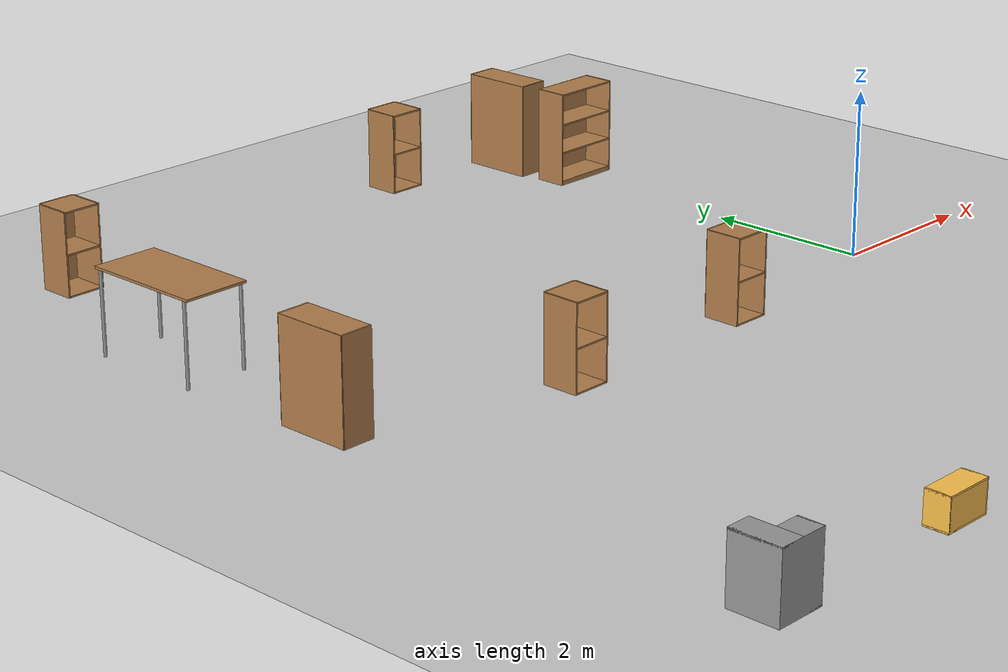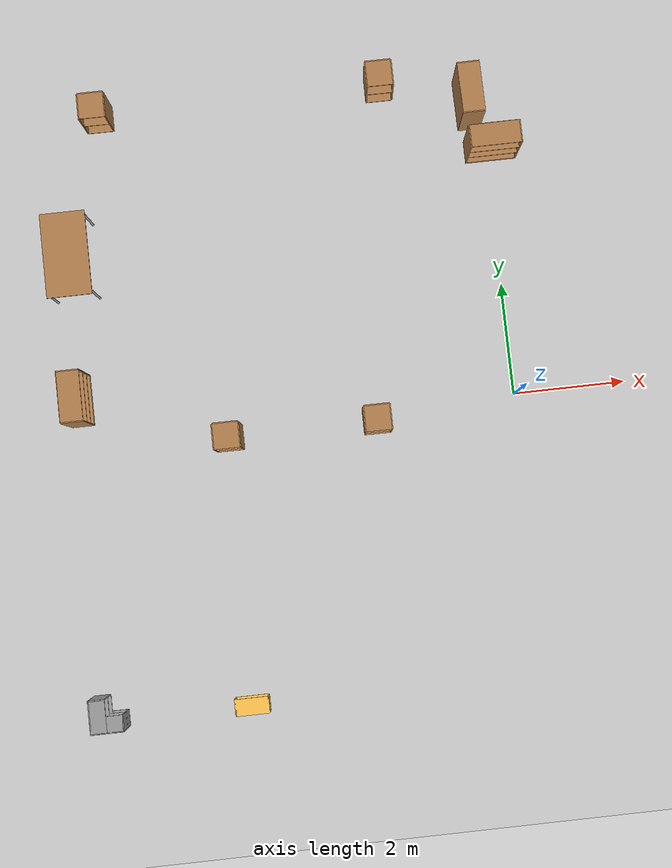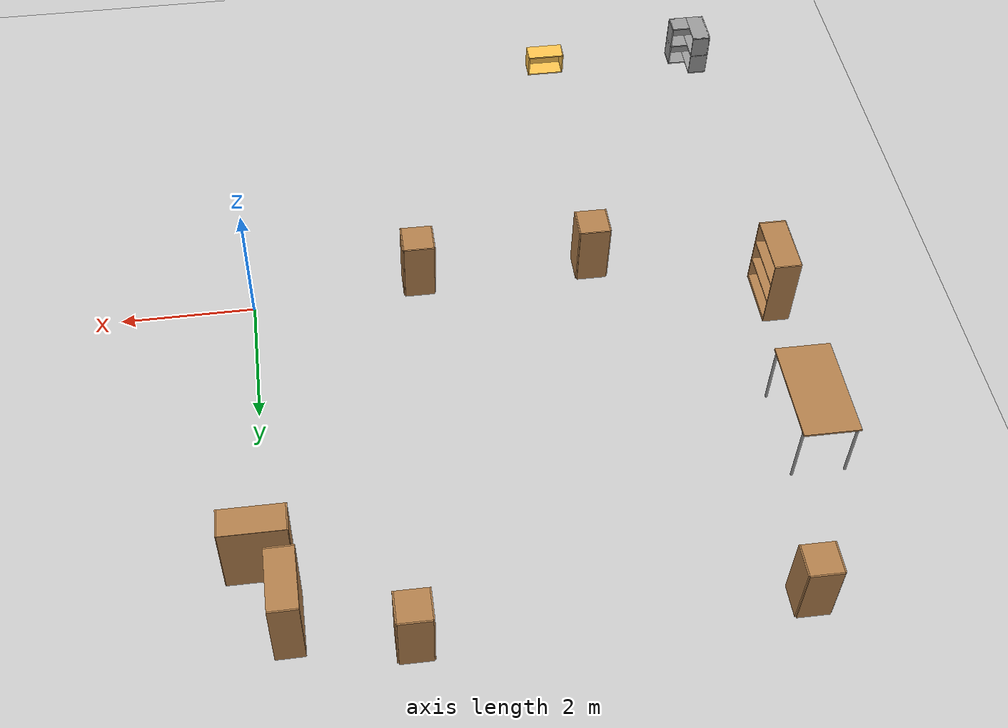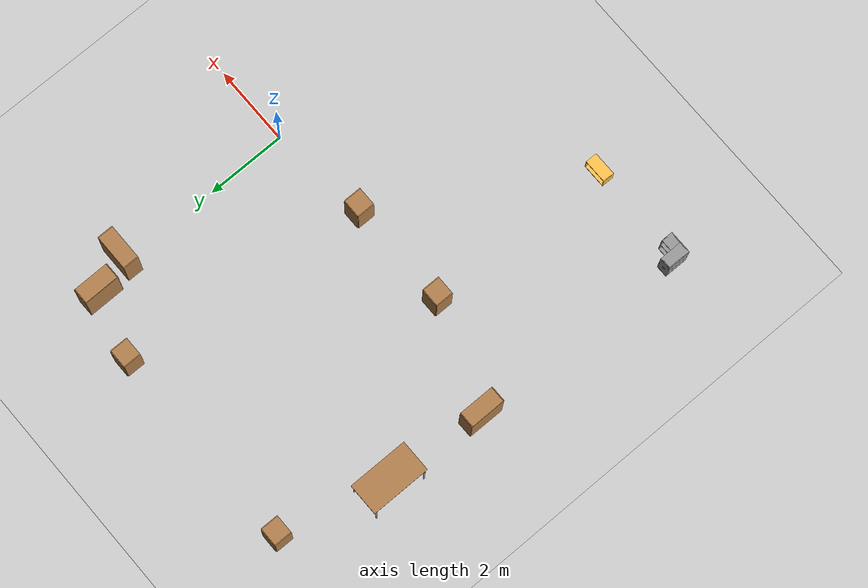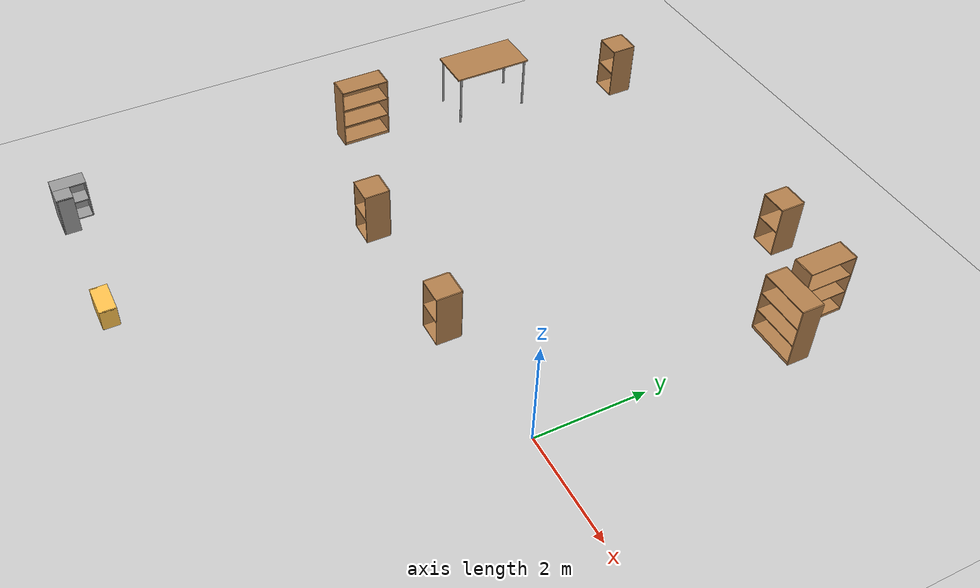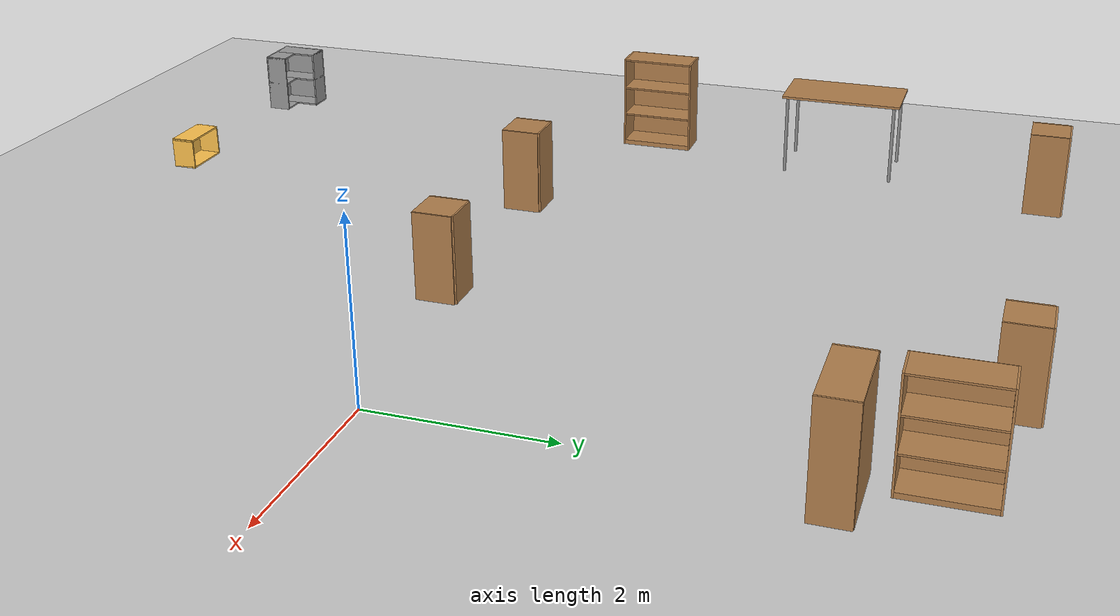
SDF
<sdf version="1.7">
 <world name="default">
  <model name="ground_plane">
   <static>1</static>
   <link name="link">
    <collision name="collision">
     <geometry><plane><normal>0 0 1</normal><size>100 100</size></plane></geometry>
     <surface><friction><ode><mu>100</mu><mu2>50</mu2></ode></friction></surface>
    </collision>
    <visual name="visual">
     <cast_shadows>0</cast_shadows>
     <geometry><plane><normal>0 0 1</normal><size>100 100</size></plane></geometry>
     <material>
      <script><uri>file://media/materials/scripts/gazebo.material</uri><name>Gazebo/Grey</name></script>
     </material>
    </visual>
   </link>
  </model>
  <model name="cabinet">
   <static>1</static>
   <link name="cabinet_bottom_plate">
    <inertial>
     <pose>0 0 -1 0 -0 0</pose>
     <inertia><ixx>2.05</ixx><ixy>0</ixy><ixz>0</ixz><iyy>2.05</iyy><iyz>0</iyz><izz>2.05</izz></inertia>
     <mass>25</mass>
    </inertial>
    <collision name="cabinet_bottom_plate_geom">
     <pose>0 0 0.01 0 -0 0</pose>
     <geometry><box><size>0.45 0.45 0.02</size></box></geometry>
    </collision>
    <visual name="cabinet_bottom_plate_geom_visual">
     <pose>0 0 0.01 0 -0 0</pose>
     <geometry><box><size>0.45 0.45 0.02</size></box></geometry>
     <material>
      <script><uri>file://media/materials/scripts/gazebo.material</uri><name>Gazebo/Wood</name></script>
     </material>
    </visual>
    <collision name="cabinet_bottom_plate_geom_cabinet_back_plate">
     <pose>0.235 0 0.51 0 -0 0</pose>
     <geometry><box><size>0.02 0.45 1.02</size></box></geometry>
    </collision>
    <visual name="cabinet_bottom_plate_geom_cabinet_back_plate_visual">
     <pose>0.235 0 0.51 0 -0 0</pose>
     <geometry><box><size>0.02 0.45 1.02</size></box></geometry>
     <material>
      <script><uri>file://media/materials/scripts/gazebo.material</uri><name>Gazebo/Wood</name></script>
     </material>
    </visual>
    <collision name="cabinet_bottom_plate_geom_cabinet_left_plate">
     <pose>0 0.235 0.51 0 -0 0</pose>
     <geometry><box><size>0.45 0.02 1.02</size></box></geometry>
    </collision>
    <visual name="cabinet_bottom_plate_geom_cabinet_left_plate_visual">
     <pose>0 0.235 0.51 0 -0 0</pose>
     <geometry><box><size>0.45 0.02 1.02</size></box></geometry>
     <material>
      <script><uri>file://media/materials/scripts/gazebo.material</uri><name>Gazebo/Wood</name></script>
     </material>
    </visual>
    <collision name="cabinet_bottom_plate_geom_cabinet_middle_plate">
     <pose>0 0 0.51 0 -0 0</pose>
     <geometry><box><size>0.45 0.45 0.02</size></box></geometry>
    </collision>
    <visual name="cabinet_bottom_plate_geom_cabinet_middle_plate_visual">
     <pose>0 0 0.51 0 -0 0</pose>
     <geometry><box><size>0.45 0.45 0.02</size></box></geometry>
     <material>
      <script><uri>file://media/materials/scripts/gazebo.material</uri><name>Gazebo/Wood</name></script>
     </material>
    </visual>
    <collision name="cabinet_bottom_plate_geom_cabinet_right_plate">
     <pose>0 -0.235 0.51 0 -0 0</pose>
     <geometry><box><size>0.45 0.02 1.02</size></box></geometry>
    </collision>
    <visual name="cabinet_bottom_plate_geom_cabinet_right_plate_visual">
     <pose>0 -0.235 0.51 0 -0 0</pose>
     <geometry><box><size>0.45 0.02 1.02</size></box></geometry>
     <material>
      <script><uri>file://media/materials/scripts/gazebo.material</uri><name>Gazebo/Wood</name></script>
     </material>
    </visual>
    <collision name="cabinet_bottom_plate_geom_cabinet_top_plate">
     <pose>0 0 1.01 0 -0 0</pose>
     <geometry><box><size>0.45 0.45 0.02</size></box></geometry>
    </collision>
    <visual name="cabinet_bottom_plate_geom_cabinet_top_plate_visual">
     <pose>0 0 1.01 0 -0 0</pose>
     <geometry><box><size>0.45 0.45 0.02</size></box></geometry>
     <material>
      <script><uri>file://media/materials/scripts/gazebo.material</uri><name>Gazebo/Wood</name></script>
     </material>
    </visual>
   </link>
   <pose>-5.19247 -0.257343 0 0 -0 1.5679</pose>
  </model>
  <model name="cabinet_clone">
   <static>1</static>
   <link name="cabinet_bottom_plate">
    <inertial>
     <pose>0 0 -1 0 -0 0</pose>
     <inertia><ixx>2.05</ixx><ixy>0</ixy><ixz>0</ixz><iyy>2.05</iyy><iyz>0</iyz><izz>2.05</izz></inertia>
     <mass>25</mass>
    </inertial>
    <collision name="cabinet_bottom_plate_geom">
     <pose>0 0 0.01 0 -0 0</pose>
     <geometry><box><size>0.45 0.45 0.02</size></box></geometry>
    </collision>
    <visual name="cabinet_bottom_plate_geom_visual">
     <pose>0 0 0.01 0 -0 0</pose>
     <geometry><box><size>0.45 0.45 0.02</size></box></geometry>
     <material>
      <script><uri>file://media/materials/scripts/gazebo.material</uri><name>Gazebo/Wood</name></script>
     </material>
    </visual>
    <collision name="cabinet_bottom_plate_geom_cabinet_back_plate">
     <pose>0.235 0 0.51 0 -0 0</pose>
     <geometry><box><size>0.02 0.45 1.02</size></box></geometry>
    </collision>
    <visual name="cabinet_bottom_plate_geom_cabinet_back_plate_visual">
     <pose>0.235 0 0.51 0 -0 0</pose>
     <geometry><box><size>0.02 0.45 1.02</size></box></geometry>
     <material>
      <script><uri>file://media/materials/scripts/gazebo.material</uri><name>Gazebo/Wood</name></script>
     </material>
    </visual>
    <collision name="cabinet_bottom_plate_geom_cabinet_left_plate">
     <pose>0 0.235 0.51 0 -0 0</pose>
     <geometry><box><size>0.45 0.02 1.02</size></box></geometry>
    </collision>
    <visual name="cabinet_bottom_plate_geom_cabinet_left_plate_visual">
     <pose>0 0.235 0.51 0 -0 0</pose>
     <geometry><box><size>0.45 0.02 1.02</size></box></geometry>
     <material>
      <script><uri>file://media/materials/scripts/gazebo.material</uri><name>Gazebo/Wood</name></script>
     </material>
    </visual>
    <collision name="cabinet_bottom_plate_geom_cabinet_middle_plate">
     <pose>0 0 0.51 0 -0 0</pose>
     <geometry><box><size>0.45 0.45 0.02</size></box></geometry>
    </collision>
    <visual name="cabinet_bottom_plate_geom_cabinet_middle_plate_visual">
     <pose>0 0 0.51 0 -0 0</pose>
     <geometry><box><size>0.45 0.45 0.02</size></box></geometry>
     <material>
      <script><uri>file://media/materials/scripts/gazebo.material</uri><name>Gazebo/Wood</name></script>
     </material>
    </visual>
    <collision name="cabinet_bottom_plate_geom_cabinet_right_plate">
     <pose>0 -0.235 0.51 0 -0 0</pose>
     <geometry><box><size>0.45 0.02 1.02</size></box></geometry>
    </collision>
    <visual name="cabinet_bottom_plate_geom_cabinet_right_plate_visual">
     <pose>0 -0.235 0.51 0 -0 0</pose>
     <geometry><box><size>0.45 0.02 1.02</size></box></geometry>
     <material>
      <script><uri>file://media/materials/scripts/gazebo.material</uri><name>Gazebo/Wood</name></script>
     </material>
    </visual>
    <collision name="cabinet_bottom_plate_geom_cabinet_top_plate">
     <pose>0 0 1.01 0 -0 0</pose>
     <geometry><box><size>0.45 0.45 0.02</size></box></geometry>
    </collision>
    <visual name="cabinet_bottom_plate_geom_cabinet_top_plate_visual">
     <pose>0 0 1.01 0 -0 0</pose>
     <geometry><box><size>0.45 0.45 0.02</size></box></geometry>
     <material>
      <script><uri>file://media/materials/scripts/gazebo.material</uri><name>Gazebo/Wood</name></script>
     </material>
    </visual>
   </link>
   <pose>-2.52894 -0.235302 0 0 -0 1.5679</pose>
  </model>
  <model name="cabinet_clone_1">
   <static>1</static>
   <link name="cabinet_bottom_plate">
    <inertial>
     <pose>0 0 -1 0 -0 0</pose>
     <inertia><ixx>2.05</ixx><ixy>0</ixy><ixz>0</ixz><iyy>2.05</iyy><iyz>0</iyz><izz>2.05</izz></inertia>
     <mass>25</mass>
    </inertial>
    <collision name="cabinet_bottom_plate_geom">
     <pose>0 0 0.01 0 -0 0</pose>
     <geometry><box><size>0.45 0.45 0.02</size></box></geometry>
    </collision>
    <visual name="cabinet_bottom_plate_geom_visual">
     <pose>0 0 0.01 0 -0 0</pose>
     <geometry><box><size>0.45 0.45 0.02</size></box></geometry>
     <material>
      <script><uri>file://media/materials/scripts/gazebo.material</uri><name>Gazebo/Wood</name></script>
     </material>
    </visual>
    <collision name="cabinet_bottom_plate_geom_cabinet_back_plate">
     <pose>0.235 0 0.51 0 -0 0</pose>
     <geometry><box><size>0.02 0.45 1.02</size></box></geometry>
    </collision>
    <visual name="cabinet_bottom_plate_geom_cabinet_back_plate_visual">
     <pose>0.235 0 0.51 0 -0 0</pose>
     <geometry><box><size>0.02 0.45 1.02</size></box></geometry>
     <material>
      <script><uri>file://media/materials/scripts/gazebo.material</uri><name>Gazebo/Wood</name></script>
     </material>
    </visual>
    <collision name="cabinet_bottom_plate_geom_cabinet_left_plate">
     <pose>0 0.235 0.51 0 -0 0</pose>
     <geometry><box><size>0.45 0.02 1.02</size></box></geometry>
    </collision>
    <visual name="cabinet_bottom_plate_geom_cabinet_left_plate_visual">
     <pose>0 0.235 0.51 0 -0 0</pose>
     <geometry><box><size>0.45 0.02 1.02</size></box></geometry>
     <material>
      <script><uri>file://media/materials/scripts/gazebo.material</uri><name>Gazebo/Wood</name></script>
     </material>
    </visual>
    <collision name="cabinet_bottom_plate_geom_cabinet_middle_plate">
     <pose>0 0 0.51 0 -0 0</pose>
     <geometry><box><size>0.45 0.45 0.02</size></box></geometry>
    </collision>
    <visual name="cabinet_bottom_plate_geom_cabinet_middle_plate_visual">
     <pose>0 0 0.51 0 -0 0</pose>
     <geometry><box><size>0.45 0.45 0.02</size></box></geometry>
     <material>
      <script><uri>file://media/materials/scripts/gazebo.material</uri><name>Gazebo/Wood</name></script>
     </material>
    </visual>
    <collision name="cabinet_bottom_plate_geom_cabinet_right_plate">
     <pose>0 -0.235 0.51 0 -0 0</pose>
     <geometry><box><size>0.45 0.02 1.02</size></box></geometry>
    </collision>
    <visual name="cabinet_bottom_plate_geom_cabinet_right_plate_visual">
     <pose>0 -0.235 0.51 0 -0 0</pose>
     <geometry><box><size>0.45 0.02 1.02</size></box></geometry>
     <material>
      <script><uri>file://media/materials/scripts/gazebo.material</uri><name>Gazebo/Wood</name></script>
     </material>
    </visual>
    <collision name="cabinet_bottom_plate_geom_cabinet_top_plate">
     <pose>0 0 1.01 0 -0 0</pose>
     <geometry><box><size>0.45 0.45 0.02</size></box></geometry>
    </collision>
    <visual name="cabinet_bottom_plate_geom_cabinet_top_plate_visual">
     <pose>0 0 1.01 0 -0 0</pose>
     <geometry><box><size>0.45 0.45 0.02</size></box></geometry>
     <material>
      <script><uri>file://media/materials/scripts/gazebo.material</uri><name>Gazebo/Wood</name></script>
     </material>
    </visual>
   </link>
   <pose>-6.97555 5.82958 0 0 -0 1.5679</pose>
  </model>
  <model name="cabinet_clone_2">
   <static>1</static>
   <link name="cabinet_bottom_plate">
    <inertial>
     <pose>0 0 -1 0 -0 0</pose>
     <inertia><ixx>2.05</ixx><ixy>0</ixy><ixz>0</ixz><iyy>2.05</iyy><iyz>0</iyz><izz>2.05</izz></inertia>
     <mass>25</mass>
    </inertial>
    <collision name="cabinet_bottom_plate_geom">
     <pose>0 0 0.01 0 -0 0</pose>
     <geometry><box><size>0.45 0.45 0.02</size></box></geometry>
    </collision>
    <visual name="cabinet_bottom_plate_geom_visual">
     <pose>0 0 0.01 0 -0 0</pose>
     <geometry><box><size>0.45 0.45 0.02</size></box></geometry>
     <material>
      <script><uri>file://media/materials/scripts/gazebo.material</uri><name>Gazebo/Wood</name></script>
     </material>
    </visual>
    <collision name="cabinet_bottom_plate_geom_cabinet_back_plate">
     <pose>0.235 0 0.51 0 -0 0</pose>
     <geometry><box><size>0.02 0.45 1.02</size></box></geometry>
    </collision>
    <visual name="cabinet_bottom_plate_geom_cabinet_back_plate_visual">
     <pose>0.235 0 0.51 0 -0 0</pose>
     <geometry><box><size>0.02 0.45 1.02</size></box></geometry>
     <material>
      <script><uri>file://media/materials/scripts/gazebo.material</uri><name>Gazebo/Wood</name></script>
     </material>
    </visual>
    <collision name="cabinet_bottom_plate_geom_cabinet_left_plate">
     <pose>0 0.235 0.51 0 -0 0</pose>
     <geometry><box><size>0.45 0.02 1.02</size></box></geometry>
    </collision>
    <visual name="cabinet_bottom_plate_geom_cabinet_left_plate_visual">
     <pose>0 0.235 0.51 0 -0 0</pose>
     <geometry><box><size>0.45 0.02 1.02</size></box></geometry>
     <material>
      <script><uri>file://media/materials/scripts/gazebo.material</uri><name>Gazebo/Wood</name></script>
     </material>
    </visual>
    <collision name="cabinet_bottom_plate_geom_cabinet_middle_plate">
     <pose>0 0 0.51 0 -0 0</pose>
     <geometry><box><size>0.45 0.45 0.02</size></box></geometry>
    </collision>
    <visual name="cabinet_bottom_plate_geom_cabinet_middle_plate_visual">
     <pose>0 0 0.51 0 -0 0</pose>
     <geometry><box><size>0.45 0.45 0.02</size></box></geometry>
     <material>
      <script><uri>file://media/materials/scripts/gazebo.material</uri><name>Gazebo/Wood</name></script>
     </material>
    </visual>
    <collision name="cabinet_bottom_plate_geom_cabinet_right_plate">
     <pose>0 -0.235 0.51 0 -0 0</pose>
     <geometry><box><size>0.45 0.02 1.02</size></box></geometry>
    </collision>
    <visual name="cabinet_bottom_plate_geom_cabinet_right_plate_visual">
     <pose>0 -0.235 0.51 0 -0 0</pose>
     <geometry><box><size>0.45 0.02 1.02</size></box></geometry>
     <material>
      <script><uri>file://media/materials/scripts/gazebo.material</uri><name>Gazebo/Wood</name></script>
     </material>
    </visual>
    <collision name="cabinet_bottom_plate_geom_cabinet_top_plate">
     <pose>0 0 1.01 0 -0 0</pose>
     <geometry><box><size>0.45 0.45 0.02</size></box></geometry>
    </collision>
    <visual name="cabinet_bottom_plate_geom_cabinet_top_plate_visual">
     <pose>0 0 1.01 0 -0 0</pose>
     <geometry><box><size>0.45 0.45 0.02</size></box></geometry>
     <material>
      <script><uri>file://media/materials/scripts/gazebo.material</uri><name>Gazebo/Wood</name></script>
     </material>
    </visual>
   </link>
   <pose>-1.83329 5.85493 0 0 -0 1.5679</pose>
  </model>
  <model name="bookshelf">
   <static>1</static>
   <link name="link">
    <inertial><mass>1</mass></inertial>
    <collision name="back">
     <pose>0 0.005 0.6 0 -0 0</pose>
     <geometry><box><size>0.9 0.01 1.2</size></box></geometry>
    </collision>
    <visual name="visual1">
     <pose>0 0.005 0.6 0 -0 0</pose>
     <geometry><box><size>0.9 0.01 1.2</size></box></geometry>
     <material>
      <script><uri>file://media/materials/scripts/gazebo.material</uri><name>Gazebo/Wood</name></script>
     </material>
    </visual>
    <collision name="left_side">
     <pose>0.45 -0.195 0.6 0 -0 0</pose>
     <geometry><box><size>0.02 0.4 1.2</size></box></geometry>
    </collision>
    <visual name="visual2">
     <pose>0.45 -0.195 0.6 0 -0 0</pose>
     <geometry><box><size>0.02 0.4 1.2</size></box></geometry>
     <material>
      <script><uri>file://media/materials/scripts/gazebo.material</uri><name>Gazebo/Wood</name></script>
     </material>
    </visual>
    <collision name="right_side">
     <pose>-0.45 -0.195 0.6 0 -0 0</pose>
     <geometry><box><size>0.02 0.4 1.2</size></box></geometry>
    </collision>
    <visual name="visual3">
     <pose>-0.45 -0.195 0.6 0 -0 0</pose>
     <geometry><box><size>0.02 0.4 1.2</size></box></geometry>
     <material>
      <script><uri>file://media/materials/scripts/gazebo.material</uri><name>Gazebo/Wood</name></script>
     </material>
    </visual>
    <collision name="bottom">
     <pose>0 -0.195 0.03 0 -0 0</pose>
     <geometry><box><size>0.88 0.4 0.06</size></box></geometry>
    </collision>
    <visual name="visual4">
     <pose>0 -0.195 0.03 0 -0 0</pose>
     <geometry><box><size>0.88 0.4 0.06</size></box></geometry>
     <material>
      <script><uri>file://media/materials/scripts/gazebo.material</uri><name>Gazebo/Wood</name></script>
     </material>
    </visual>
    <collision name="top">
     <pose>0 -0.195 1.19 0 -0 0</pose>
     <geometry><box><size>0.88 0.4 0.02</size></box></geometry>
    </collision>
    <visual name="visual5">
     <pose>0 -0.195 1.19 0 -0 0</pose>
     <geometry><box><size>0.88 0.4 0.02</size></box></geometry>
     <material>
      <script><uri>file://media/materials/scripts/gazebo.material</uri><name>Gazebo/Wood</name></script>
     </material>
    </visual>
    <collision name="low_shelf">
     <pose>0 -0.195 0.43 0 -0 0</pose>
     <geometry><box><size>0.88 0.4 0.02</size></box></geometry>
    </collision>
    <visual name="visual6">
     <pose>0 -0.195 0.43 0 -0 0</pose>
     <geometry><box><size>0.88 0.4 0.02</size></box></geometry>
     <material>
      <script><uri>file://media/materials/scripts/gazebo.material</uri><name>Gazebo/Wood</name></script>
     </material>
    </visual>
    <collision name="high_shelf">
     <pose>0 -0.195 0.8 0 -0 0</pose>
     <geometry><box><size>0.88 0.4 0.02</size></box></geometry>
    </collision>
    <visual name="visual7">
     <pose>0 -0.195 0.8 0 -0 0</pose>
     <geometry><box><size>0.88 0.4 0.02</size></box></geometry>
     <material>
      <script><uri>file://media/materials/scripts/gazebo.material</uri><name>Gazebo/Wood</name></script>
     </material>
    </visual>
   </link>
   <pose>0.076772 4.69885 0 0 -0 0</pose>
  </model>
  <model name="bookshelf_1">
   <static>1</static>
   <link name="link">
    <inertial><mass>1</mass></inertial>
    <collision name="back">
     <pose>0 0.005 0.6 0 -0 0</pose>
     <geometry><box><size>0.9 0.01 1.2</size></box></geometry>
    </collision>
    <visual name="visual1">
     <pose>0 0.005 0.6 0 -0 0</pose>
     <geometry><box><size>0.9 0.01 1.2</size></box></geometry>
     <material>
      <script><uri>file://media/materials/scripts/gazebo.material</uri><name>Gazebo/Wood</name></script>
     </material>
    </visual>
    <collision name="left_side">
     <pose>0.45 -0.195 0.6 0 -0 0</pose>
     <geometry><box><size>0.02 0.4 1.2</size></box></geometry>
    </collision>
    <visual name="visual2">
     <pose>0.45 -0.195 0.6 0 -0 0</pose>
     <geometry><box><size>0.02 0.4 1.2</size></box></geometry>
     <material>
      <script><uri>file://media/materials/scripts/gazebo.material</uri><name>Gazebo/Wood</name></script>
     </material>
    </visual>
    <collision name="right_side">
     <pose>-0.45 -0.195 0.6 0 -0 0</pose>
     <geometry><box><size>0.02 0.4 1.2</size></box></geometry>
    </collision>
    <visual name="visual3">
     <pose>-0.45 -0.195 0.6 0 -0 0</pose>
     <geometry><box><size>0.02 0.4 1.2</size></box></geometry>
     <material>
      <script><uri>file://media/materials/scripts/gazebo.material</uri><name>Gazebo/Wood</name></script>
     </material>
    </visual>
    <collision name="bottom">
     <pose>0 -0.195 0.03 0 -0 0</pose>
     <geometry><box><size>0.88 0.4 0.06</size></box></geometry>
    </collision>
    <visual name="visual4">
     <pose>0 -0.195 0.03 0 -0 0</pose>
     <geometry><box><size>0.88 0.4 0.06</size></box></geometry>
     <material>
      <script><uri>file://media/materials/scripts/gazebo.material</uri><name>Gazebo/Wood</name></script>
     </material>
    </visual>
    <collision name="top">
     <pose>0 -0.195 1.19 0 -0 0</pose>
     <geometry><box><size>0.88 0.4 0.02</size></box></geometry>
    </collision>
    <visual name="visual5">
     <pose>0 -0.195 1.19 0 -0 0</pose>
     <geometry><box><size>0.88 0.4 0.02</size></box></geometry>
     <material>
      <script><uri>file://media/materials/scripts/gazebo.material</uri><name>Gazebo/Wood</name></script>
     </material>
    </visual>
    <collision name="low_shelf">
     <pose>0 -0.195 0.43 0 -0 0</pose>
     <geometry><box><size>0.88 0.4 0.02</size></box></geometry>
    </collision>
    <visual name="visual6">
     <pose>0 -0.195 0.43 0 -0 0</pose>
     <geometry><box><size>0.88 0.4 0.02</size></box></geometry>
     <material>
      <script><uri>file://media/materials/scripts/gazebo.material</uri><name>Gazebo/Wood</name></script>
     </material>
    </visual>
    <collision name="high_shelf">
     <pose>0 -0.195 0.8 0 -0 0</pose>
     <geometry><box><size>0.88 0.4 0.02</size></box></geometry>
    </collision>
    <visual name="visual7">
     <pose>0 -0.195 0.8 0 -0 0</pose>
     <geometry><box><size>0.88 0.4 0.02</size></box></geometry>
     <material>
      <script><uri>file://media/materials/scripts/gazebo.material</uri><name>Gazebo/Wood</name></script>
     </material>
    </visual>
   </link>
   <pose>-0.446756 5.38438 0 0 -0 1.57988</pose>
  </model>
  <model name="bookshelf_clone">
   <static>1</static>
   <link name="link">
    <inertial><mass>1</mass></inertial>
    <collision name="back">
     <pose>0 0.005 0.6 0 -0 0</pose>
     <geometry><box><size>0.9 0.01 1.2</size></box></geometry>
    </collision>
    <visual name="visual1">
     <pose>0 0.005 0.6 0 -0 0</pose>
     <geometry><box><size>0.9 0.01 1.2</size></box></geometry>
     <material>
      <script><uri>file://media/materials/scripts/gazebo.material</uri><name>Gazebo/Wood</name></script>
     </material>
    </visual>
    <collision name="left_side">
     <pose>0.45 -0.195 0.6 0 -0 0</pose>
     <geometry><box><size>0.02 0.4 1.2</size></box></geometry>
    </collision>
    <visual name="visual2">
     <pose>0.45 -0.195 0.6 0 -0 0</pose>
     <geometry><box><size>0.02 0.4 1.2</size></box></geometry>
     <material>
      <script><uri>file://media/materials/scripts/gazebo.material</uri><name>Gazebo/Wood</name></script>
     </material>
    </visual>
    <collision name="right_side">
     <pose>-0.45 -0.195 0.6 0 -0 0</pose>
     <geometry><box><size>0.02 0.4 1.2</size></box></geometry>
    </collision>
    <visual name="visual3">
     <pose>-0.45 -0.195 0.6 0 -0 0</pose>
     <geometry><box><size>0.02 0.4 1.2</size></box></geometry>
     <material>
      <script><uri>file://media/materials/scripts/gazebo.material</uri><name>Gazebo/Wood</name></script>
     </material>
    </visual>
    <collision name="bottom">
     <pose>0 -0.195 0.03 0 -0 0</pose>
     <geometry><box><size>0.88 0.4 0.06</size></box></geometry>
    </collision>
    <visual name="visual4">
     <pose>0 -0.195 0.03 0 -0 0</pose>
     <geometry><box><size>0.88 0.4 0.06</size></box></geometry>
     <material>
      <script><uri>file://media/materials/scripts/gazebo.material</uri><name>Gazebo/Wood</name></script>
     </material>
    </visual>
    <collision name="top">
     <pose>0 -0.195 1.19 0 -0 0</pose>
     <geometry><box><size>0.88 0.4 0.02</size></box></geometry>
    </collision>
    <visual name="visual5">
     <pose>0 -0.195 1.19 0 -0 0</pose>
     <geometry><box><size>0.88 0.4 0.02</size></box></geometry>
     <material>
      <script><uri>file://media/materials/scripts/gazebo.material</uri><name>Gazebo/Wood</name></script>
     </material>
    </visual>
    <collision name="low_shelf">
     <pose>0 -0.195 0.43 0 -0 0</pose>
     <geometry><box><size>0.88 0.4 0.02</size></box></geometry>
    </collision>
    <visual name="visual6">
     <pose>0 -0.195 0.43 0 -0 0</pose>
     <geometry><box><size>0.88 0.4 0.02</size></box></geometry>
     <material>
      <script><uri>file://media/materials/scripts/gazebo.material</uri><name>Gazebo/Wood</name></script>
     </material>
    </visual>
    <collision name="high_shelf">
     <pose>0 -0.195 0.8 0 -0 0</pose>
     <geometry><box><size>0.88 0.4 0.02</size></box></geometry>
    </collision>
    <visual name="visual7">
     <pose>0 -0.195 0.8 0 -0 0</pose>
     <geometry><box><size>0.88 0.4 0.02</size></box></geometry>
     <material>
      <script><uri>file://media/materials/scripts/gazebo.material</uri><name>Gazebo/Wood</name></script>
     </material>
    </visual>
   </link>
   <pose>-7.99648 0.705306 0 0 -0 1.57059</pose>
  </model>
  <model name="table_clone_clone">
   <static>1</static>
   <link name="link">
    <collision name="surface">
     <pose>0 0 1 0 -0 0</pose>
     <geometry><box><size>1.5 0.8 0.03</size></box></geometry>
     <surface><friction><ode><mu>0.6</mu><mu2>0.6</mu2></ode></friction></surface>
    </collision>
    <visual name="visual1">
     <pose>0 0 1 0 -0 0</pose>
     <geometry><box><size>1.5 0.8 0.03</size></box></geometry>
     <material>
      <script><uri>file://media/materials/scripts/gazebo.material</uri><name>Gazebo/Wood</name></script>
     </material>
    </visual>
    <collision name="front_left_leg">
     <pose>0.68 0.38 0.5 0 -0 0</pose>
     <geometry><cylinder><radius>0.02</radius><length>1</length></cylinder></geometry>
    </collision>
    <visual name="front_left_leg">
     <pose>0.68 0.38 0.5 0 -0 0</pose>
     <geometry><cylinder><radius>0.02</radius><length>1</length></cylinder></geometry>
     <material>
      <script><uri>file://media/materials/scripts/gazebo.material</uri><name>Gazebo/Grey</name></script>
     </material>
    </visual>
    <collision name="front_right_leg">
     <pose>0.68 -0.38 0.5 0 -0 0</pose>
     <geometry><cylinder><radius>0.02</radius><length>1</length></cylinder></geometry>
    </collision>
    <visual name="front_right_leg">
     <pose>0.68 -0.38 0.5 0 -0 0</pose>
     <geometry><cylinder><radius>0.02</radius><length>1</length></cylinder></geometry>
     <material>
      <script><uri>file://media/materials/scripts/gazebo.material</uri><name>Gazebo/Grey</name></script>
     </material>
    </visual>
    <collision name="back_right_leg">
     <pose>-0.68 -0.38 0.5 0 -0 0</pose>
     <geometry><cylinder><radius>0.02</radius><length>1</length></cylinder></geometry>
    </collision>
    <visual name="back_right_leg">
     <pose>-0.68 -0.38 0.5 0 -0 0</pose>
     <geometry><cylinder><radius>0.02</radius><length>1</length></cylinder></geometry>
     <material>
      <script><uri>file://media/materials/scripts/gazebo.material</uri><name>Gazebo/Grey</name></script>
     </material>
    </visual>
    <collision name="back_left_leg">
     <pose>-0.68 0.38 0.5 0 -0 0</pose>
     <geometry><cylinder><radius>0.02</radius><length>1</length></cylinder></geometry>
    </collision>
    <visual name="back_left_leg">
     <pose>-0.68 0.38 0.5 0 -0 0</pose>
     <geometry><cylinder><radius>0.02</radius><length>1</length></cylinder></geometry>
     <material>
      <script><uri>file://media/materials/scripts/gazebo.material</uri><name>Gazebo/Grey</name></script>
     </material>
    </visual>
   </link>
   <pose>-7.66615 3.22647 0 0 -0 1.57073</pose>
  </model>
  <model name="Wall_Cabinet_Coin_24x30W">
   <link name="Wall_10">
    <pose>0.286 -0.148 0.384 0 -0 0</pose>
    <inertial>
     <mass>2.1259</mass>
     <inertia><ixx>0.0158</ixx><iyy>0.1202</iyy><izz>0.1046</izz><ixy>0</ixy><ixz>0</ixz><iyz>0</iyz></inertia>
    </inertial>
    <collision name="Wall_10_Collision"><geometry><box><size>0.02 0.296 0.768</size></box></geometry></collision>
    <visual name="Wall_10_Visual">
     <geometry><box><size>0.02 0.296 0.768</size></box></geometry>
     <material>
      <script><uri>file://media/materials/scripts/gazebo.material</uri><name>Gazebo/Grey</name></script>
      <ambient>1 1 1 1</ambient>
     </material>
    </visual>
   </link>
   <joint name="10_16" type="fixed">
    <pose>0 0 -0.374 0 -0 0</pose>
    <parent>Wall_16</parent>
    <child>Wall_10</child>
    <axis><xyz>1 0 0</xyz><limit><lower>-1e+16</lower><upper>1e+16</upper></limit></axis>
   </joint>
   <joint name="10_14" type="fixed">
    <parent>Wall_14</parent>
    <child>Wall_10</child>
    <axis><xyz>1 0 0</xyz><limit><lower>-1e+16</lower><upper>1e+16</upper></limit></axis>
   </joint>
   <joint name="10_12" type="fixed">
    <pose>0 0 0.374 0 -0 0</pose>
    <parent>Wall_12</parent>
    <child>Wall_10</child>
    <axis><xyz>1 0 0</xyz><limit><lower>-1e+16</lower><upper>1e+16</upper></limit></axis>
   </joint>
   <joint name="10_29" type="fixed">
    <pose>0 -0.148 0 0 -0 0</pose>
    <parent>Wall_29</parent>
    <child>Wall_10</child>
    <axis><xyz>1 0 0</xyz><limit><lower>-1e+16</lower><upper>1e+16</upper></limit></axis>
   </joint>
   <link name="Wall_12">
    <pose>0.148 -0.148 0.758 0 -0 0</pose>
    <inertial>
     <mass>0.8802</mass>
     <inertia><ixx>0.0065</ixx><iyy>0.0139</iyy><izz>0.0074</izz><ixy>0</ixy><ixz>0</ixz><iyz>0</iyz></inertia>
    </inertial>
    <collision name="Wall_12_Collision"><geometry><box><size>0.296 0.296 0.02</size></box></geometry></collision>
    <visual name="Wall_12_Visual">
     <geometry><box><size>0.296 0.296 0.02</size></box></geometry>
     <material>
      <script><uri>file://media/materials/scripts/gazebo.material</uri><name>Gazebo/Grey</name></script>
      <ambient>1 1 1 1</ambient>
     </material>
    </visual>
   </link>
   <joint name="12_29" type="fixed">
    <pose>0 -0.148 0 0 -0 0</pose>
    <parent>Wall_29</parent>
    <child>Wall_12</child>
    <axis><xyz>0 0 1</xyz><limit><lower>-1e+16</lower><upper>1e+16</upper></limit></axis>
   </joint>
   <link name="Wall_14">
    <pose>0.148 -0.148 0.384 0 -0 0</pose>
    <inertial>
     <mass>0.8802</mass>
     <inertia><ixx>0.0065</ixx><iyy>0.0139</iyy><izz>0.0074</izz><ixy>0</ixy><ixz>0</ixz><iyz>0</iyz></inertia>
    </inertial>
    <collision name="Wall_14_Collision"><geometry><box><size>0.296 0.296 0.02</size></box></geometry></collision>
    <visual name="Wall_14_Visual">
     <geometry><box><size>0.296 0.296 0.02</size></box></geometry>
     <material>
      <script><uri>file://media/materials/scripts/gazebo.material</uri><name>Gazebo/Grey</name></script>
      <ambient>1 1 1 1</ambient>
     </material>
    </visual>
   </link>
   <joint name="14_29" type="fixed">
    <pose>0 -0.148 0 0 -0 0</pose>
    <parent>Wall_29</parent>
    <child>Wall_14</child>
    <axis><xyz>0 1 0</xyz><limit><lower>-1e+16</lower><upper>1e+16</upper></limit></axis>
   </joint>
   <link name="Wall_16">
    <pose>0.148 -0.148 0.01 0 -0 0</pose>
    <inertial>
     <mass>0.8802</mass>
     <inertia><ixx>0.0065</ixx><iyy>0.0139</iyy><izz>0.0074</izz><ixy>0</ixy><ixz>0</ixz><iyz>0</iyz></inertia>
    </inertial>
    <collision name="Wall_16_Collision"><geometry><box><size>0.296 0.296 0.02</size></box></geometry></collision>
    <visual name="Wall_16_Visual">
     <geometry><box><size>0.296 0.296 0.02</size></box></geometry>
     <material>
      <script><uri>file://media/materials/scripts/gazebo.material</uri><name>Gazebo/Grey</name></script>
      <ambient>1 1 1 1</ambient>
     </material>
    </visual>
   </link>
   <joint name="16_29" type="fixed">
    <pose>0 -0.148 0 0 -0 0</pose>
    <parent>Wall_29</parent>
    <child>Wall_16</child>
    <axis><xyz>0 1 0</xyz><limit><lower>-1e+16</lower><upper>1e+16</upper></limit></axis>
   </joint>
   <link name="Wall_18">
    <pose>-0.148 0 0.01 0 -0 0</pose>
    <inertial>
     <mass>1.6525</mass>
     <inertia><ixx>0.0491</ixx><iyy>0.0613</iyy><izz>0.0123</izz><ixy>0</ixy><ixz>0</ixz><iyz>0</iyz></inertia>
    </inertial>
    <collision name="Wall_18_Collision"><geometry><box><size>0.296 0.592 0.02</size></box></geometry></collision>
    <visual name="Wall_18_Visual">
     <geometry><box><size>0.296 0.592 0.02</size></box></geometry>
     <material>
      <script><uri>file://media/materials/scripts/gazebo.material</uri><name>Gazebo/Grey</name></script>
      <ambient>1 1 1 1</ambient>
     </material>
    </visual>
   </link>
   <joint name="18_16" type="fixed">
    <pose>0.148 -0.148 0 0 -0 0</pose>
    <parent>Wall_16</parent>
    <child>Wall_18</child>
    <axis><xyz>1 0 0</xyz><limit><lower>-1e+16</lower><upper>1e+16</upper></limit></axis>
   </joint>
   <joint name="18_29" type="fixed">
    <pose>0 -0.296 0 0 -0 0</pose>
    <parent>Wall_29</parent>
    <child>Wall_18</child>
    <axis><xyz>0 1 0</xyz><limit><lower>-1e+16</lower><upper>1e+16</upper></limit></axis>
   </joint>
   <joint name="18_27" type="fixed">
    <pose>-0.148 0 0 0 -0 0</pose>
    <parent>Wall_27</parent>
    <child>Wall_18</child>
    <axis><xyz>1 0 0</xyz><limit><lower>-1e+16</lower><upper>1e+16</upper></limit></axis>
   </joint>
   <joint name="18_30" type="fixed">
    <pose>0 0.296 0 0 -0 0</pose>
    <parent>Wall_30</parent>
    <child>Wall_18</child>
    <axis><xyz>0 1 0</xyz><limit><lower>-1e+16</lower><upper>1e+16</upper></limit></axis>
   </joint>
   <link name="Wall_20">
    <pose>-0.148 0 0.384 0 -0 0</pose>
    <inertial>
     <mass>1.6525</mass>
     <inertia><ixx>0.0491</ixx><iyy>0.0613</iyy><izz>0.0123</izz><ixy>0</ixy><ixz>0</ixz><iyz>0</iyz></inertia>
    </inertial>
    <collision name="Wall_20_Collision"><geometry><box><size>0.296 0.592 0.02</size></box></geometry></collision>
    <visual name="Wall_20_Visual">
     <geometry><box><size>0.296 0.592 0.02</size></box></geometry>
     <material>
      <script><uri>file://media/materials/scripts/gazebo.material</uri><name>Gazebo/Grey</name></script>
      <ambient>1 1 1 1</ambient>
     </material>
    </visual>
   </link>
   <joint name="20_14" type="fixed">
    <pose>0.148 -0.148 0 0 -0 0</pose>
    <parent>Wall_14</parent>
    <child>Wall_20</child>
    <axis><xyz>1 0 0</xyz><limit><lower>-1e+16</lower><upper>1e+16</upper></limit></axis>
   </joint>
   <joint name="20_29" type="fixed">
    <pose>0 -0.296 0 0 -0 0</pose>
    <parent>Wall_29</parent>
    <child>Wall_20</child>
    <axis><xyz>0 1 0</xyz><limit><lower>-1e+16</lower><upper>1e+16</upper></limit></axis>
   </joint>
   <joint name="20_27" type="fixed">
    <pose>-0.148 0 0 0 -0 0</pose>
    <parent>Wall_27</parent>
    <child>Wall_20</child>
    <axis><xyz>1 0 0</xyz><limit><lower>-1e+16</lower><upper>1e+16</upper></limit></axis>
   </joint>
   <joint name="20_30" type="fixed">
    <pose>0 0.296 0 0 -0 0</pose>
    <parent>Wall_30</parent>
    <child>Wall_20</child>
    <axis><xyz>0 1 0</xyz><limit><lower>-1e+16</lower><upper>1e+16</upper></limit></axis>
   </joint>
   <link name="Wall_22">
    <pose>-0.148 0 0.758 0 -0 0</pose>
    <inertial>
     <mass>1.6525</mass>
     <inertia><ixx>0.0491</ixx><iyy>0.0613</iyy><izz>0.0123</izz><ixy>0</ixy><ixz>0</ixz><iyz>0</iyz></inertia>
    </inertial>
    <collision name="Wall_22_Collision"><geometry><box><size>0.296 0.592 0.02</size></box></geometry></collision>
    <visual name="Wall_22_Visual">
     <geometry><box><size>0.296 0.592 0.02</size></box></geometry>
     <material>
      <script><uri>file://media/materials/scripts/gazebo.material</uri><name>Gazebo/Grey</name></script>
      <ambient>1 1 1 1</ambient>
     </material>
    </visual>
   </link>
   <joint name="22_12" type="fixed">
    <pose>0.148 -0.148 0 0 -0 0</pose>
    <parent>Wall_12</parent>
    <child>Wall_22</child>
    <axis><xyz>1 0 0</xyz><limit><lower>-1e+16</lower><upper>1e+16</upper></limit></axis>
   </joint>
   <joint name="22_29" type="fixed">
    <pose>0 -0.296 0 0 -0 0</pose>
    <parent>Wall_29</parent>
    <child>Wall_22</child>
    <axis><xyz>0 1 0</xyz><limit><lower>-1e+16</lower><upper>1e+16</upper></limit></axis>
   </joint>
   <joint name="22_27" type="fixed">
    <pose>-0.148 0 0 0 -0 0</pose>
    <parent>Wall_27</parent>
    <child>Wall_22</child>
    <axis><xyz>1 0 0</xyz><limit><lower>-1e+16</lower><upper>1e+16</upper></limit></axis>
   </joint>
   <joint name="22_30" type="fixed">
    <pose>0 0.296 0 0 -0 0</pose>
    <parent>Wall_30</parent>
    <child>Wall_22</child>
    <axis><xyz>0 1 0</xyz><limit><lower>-1e+16</lower><upper>1e+16</upper></limit></axis>
   </joint>
   <link name="Wall_27">
    <pose>-0.286 0 0.384 0 -0 0</pose>
    <inertial>
     <mass>4.2589</mass>
     <inertia><ixx>0.1266</ixx><iyy>0.3358</iyy><izz>0.2095</izz><ixy>0</ixy><ixz>0</ixz><iyz>0</iyz></inertia>
    </inertial>
    <collision name="Wall_27_Collision"><geometry><box><size>0.02 0.592 0.768</size></box></geometry></collision>
    <visual name="Wall_27_Visual">
     <geometry><box><size>0.02 0.592 0.768</size></box></geometry>
     <material>
      <script><uri>file://media/materials/scripts/gazebo.material</uri><name>Gazebo/Grey</name></script>
      <ambient>1 1 1 1</ambient>
     </material>
    </visual>
   </link>
   <joint name="27_30" type="fixed">
    <pose>0 0.296 0 0 -0 0</pose>
    <parent>Wall_30</parent>
    <child>Wall_27</child>
    <axis><xyz>0 1 0</xyz><limit><lower>-1e+16</lower><upper>1e+16</upper></limit></axis>
   </joint>
   <link name="Wall_29">
    <pose>0 -0.286 0.384 0 -0 0</pose>
    <inertial>
     <mass>4.3176</mass>
     <inertia><ixx>0.134</ixx><iyy>0.2091</iyy><izz>0.3428</izz><ixy>0</ixy><ixz>0</ixz><iyz>0</iyz></inertia>
    </inertial>
    <collision name="Wall_29_Collision"><geometry><box><size>0.592 0.02 0.768</size></box></geometry></collision>
    <visual name="Wall_29_Visual">
     <geometry><box><size>0.592 0.02 0.768</size></box></geometry>
     <material>
      <script><uri>file://media/materials/scripts/gazebo.material</uri><name>Gazebo/Grey</name></script>
      <ambient>1 1 1 1</ambient>
     </material>
    </visual>
   </link>
   <link name="Wall_30">
    <pose>-0.148 0.286 0.384 0 -0 0</pose>
    <inertial>
     <mass>2.1093</mass>
     <inertia><ixx>0.1021</ixx><iyy>0.0157</iyy><izz>0.1177</izz><ixy>0</ixy><ixz>0</ixz><iyz>0</iyz></inertia>
    </inertial>
    <collision name="Wall_30_Collision"><geometry><box><size>0.296 0.02 0.768</size></box></geometry></collision>
    <visual name="Wall_30_Visual">
     <geometry><box><size>0.296 0.02 0.768</size></box></geometry>
     <material>
      <script><uri>file://media/materials/scripts/gazebo.material</uri><name>Gazebo/Grey</name></script>
      <ambient>1 1 1 1</ambient>
     </material>
    </visual>
   </link>
   <static>1</static>
   <pose>-7.76894 -4.85236 0 0 -0 0</pose>
  </model>
  <model name="Wall_Cabinet_24x15M">
   <link name="Wall_41">
    <pose>0 0 0.01 0 -0 0</pose>
    <inertial>
     <mass>1.4983</mass>
     <inertia><ixx>0.011</ixx><iyy>0.0571</iyy><izz>0.0462</izz><ixy>0</ixy><ixz>0</ixz><iyz>0</iyz></inertia>
    </inertial>
    <collision name="Wall_41_Collision"><geometry><box><size>0.608 0.296 0.02</size></box></geometry></collision>
    <visual name="Wall_41_Visual">
     <geometry><box><size>0.608 0.296 0.02</size></box></geometry>
     <material>
      <script><uri>file://media/materials/scripts/gazebo.material</uri><name>Gazebo/Grey</name></script>
      <ambient>1 0.764706 0.305882 1</ambient>
     </material>
    </visual>
    <pose>0.000184 0.181953 0 0 -0 0</pose>
   </link>
   <joint name="41_43" type="fixed">
    <pose>-0.304 0 0 0 -0 0</pose>
    <parent>Wall_43</parent>
    <child>Wall_41</child>
    <axis><xyz>0 0 1</xyz><limit><lower>-1e+16</lower><upper>1e+16</upper></limit></axis>
   </joint>
   <joint name="41_45" type="fixed">
    <pose>0.304 0 0 0 -0 0</pose>
    <parent>Wall_45</parent>
    <child>Wall_41</child>
    <axis><xyz>0 0 1</xyz><limit><lower>-1e+16</lower><upper>1e+16</upper></limit></axis>
   </joint>
   <joint name="41_49" type="fixed">
    <pose>0 -0.148 0 0 -0 0</pose>
    <parent>Wall_49</parent>
    <child>Wall_41</child>
    <axis><xyz>0 0 1</xyz><limit><lower>-1e+16</lower><upper>1e+16</upper></limit></axis>
   </joint>
   <link name="Wall_43">
    <pose>-0.294 0 0.192 0 -0 0</pose>
    <inertial>
     <mass>0.9463</mass>
     <inertia><ixx>0.0069</ixx><iyy>0.0185</iyy><izz>0.0117</izz><ixy>0</ixy><ixz>0</ixz><iyz>0</iyz></inertia>
    </inertial>
    <collision name="Wall_43_Collision"><geometry><box><size>0.02 0.296 0.384</size></box></geometry></collision>
    <visual name="Wall_43_Visual">
     <geometry><box><size>0.02 0.296 0.384</size></box></geometry>
     <material>
      <script><uri>file://media/materials/scripts/gazebo.material</uri><name>Gazebo/Grey</name></script>
      <ambient>1 0.764706 0.305882 1</ambient>
     </material>
    </visual>
   </link>
   <link name="Wall_45">
    <pose>0.294 0 0.192 0 -0 0</pose>
    <inertial>
     <mass>0.9463</mass>
     <inertia><ixx>0.0069</ixx><iyy>0.0185</iyy><izz>0.0117</izz><ixy>0</ixy><ixz>0</ixz><iyz>0</iyz></inertia>
    </inertial>
    <collision name="Wall_45_Collision"><geometry><box><size>0.02 0.296 0.384</size></box></geometry></collision>
    <visual name="Wall_45_Visual">
     <geometry><box><size>0.02 0.296 0.384</size></box></geometry>
     <material>
      <script><uri>file://media/materials/scripts/gazebo.material</uri><name>Gazebo/Grey</name></script>
      <ambient>1 0.764706 0.305882 1</ambient>
     </material>
    </visual>
   </link>
   <link name="Wall_47">
    <pose>0 0 0.374 0 -0 0</pose>
    <inertial>
     <mass>1.4983</mass>
     <inertia><ixx>0.011</ixx><iyy>0.0571</iyy><izz>0.0462</izz><ixy>0</ixy><ixz>0</ixz><iyz>0</iyz></inertia>
    </inertial>
    <collision name="Wall_47_Collision"><geometry><box><size>0.608 0.296 0.02</size></box></geometry></collision>
    <visual name="Wall_47_Visual">
     <geometry><box><size>0.608 0.296 0.02</size></box></geometry>
     <material>
      <script><uri>file://media/materials/scripts/gazebo.material</uri><name>Gazebo/Grey</name></script>
      <ambient>1 0.764706 0.305882 1</ambient>
     </material>
    </visual>
   </link>
   <joint name="47_43" type="fixed">
    <pose>-0.304 0 0 0 -0 0</pose>
    <parent>Wall_43</parent>
    <child>Wall_47</child>
    <axis><xyz>0 0 1</xyz><limit><lower>-1e+16</lower><upper>1e+16</upper></limit></axis>
   </joint>
   <joint name="47_45" type="fixed">
    <pose>0.304 0 0 0 -0 0</pose>
    <parent>Wall_45</parent>
    <child>Wall_47</child>
    <axis><xyz>0 0 1</xyz><limit><lower>-1e+16</lower><upper>1e+16</upper></limit></axis>
   </joint>
   <joint name="47_49" type="fixed">
    <pose>0 -0.148 0 0 -0 0</pose>
    <parent>Wall_49</parent>
    <child>Wall_47</child>
    <axis><xyz>0 0 1</xyz><limit><lower>-1e+16</lower><upper>1e+16</upper></limit></axis>
   </joint>
   <link name="Wall_49">
    <pose>0 -0.138 0.19 0 -0 0</pose>
    <inertial>
     <mass>1.9108</mass>
     <inertia><ixx>0.0231</ixx><iyy>0.0582</iyy><izz>0.0811</izz><ixy>0</ixy><ixz>0</ixz><iyz>0</iyz></inertia>
    </inertial>
    <collision name="Wall_49_Collision"><geometry><box><size>0.604 0.02 0.38</size></box></geometry></collision>
    <visual name="Wall_49_Visual">
     <geometry><box><size>0.604 0.02 0.38</size></box></geometry>
     <material>
      <script><uri>file://media/materials/scripts/gazebo.material</uri><name>Gazebo/Grey</name></script>
      <ambient>1 0.764706 0.305882 1</ambient>
     </material>
    </visual>
   </link>
   <joint name="49_43" type="fixed">
    <pose>-0.302 0 0 0 -0 0</pose>
    <parent>Wall_41</parent>
    <child>Wall_49</child>
    <axis><xyz>0 1 0</xyz><limit><lower>-1e+16</lower><upper>1e+16</upper></limit></axis>
   </joint>
   <joint name="49_45" type="fixed">
    <pose>0.302 0 0 0 -0 0</pose>
    <parent>Wall_45</parent>
    <child>Wall_49</child>
    <axis><xyz>0 1 0</xyz><limit><lower>-1e+16</lower><upper>1e+16</upper></limit></axis>
   </joint>
   <static>1</static>
   <pose>-5.26525 -5.00149 0 0 -0 0</pose>
  </model>
 </world>
</sdf>
